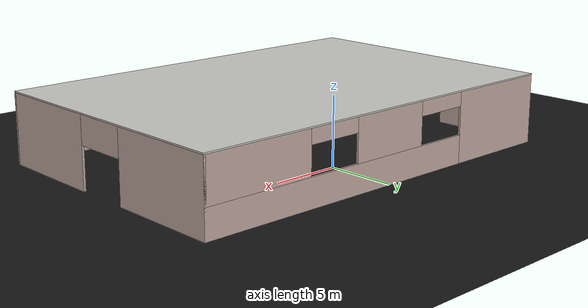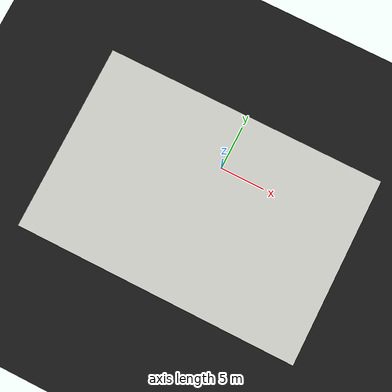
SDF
<?xml version="1.0" ?>
<sdf version="1.4">
  <world name="default">
    <physics type="ode">
      <real_time_factor>1.0</real_time_factor>
      <real_time_update_rate>1000</real_time_update_rate>
      <gravity>0 0 -9.8</gravity>
      <ode>
        <solver>
          <type>quick</type>
          <min_step_size>0.001</min_step_size>
          <iters>500</iters>
        </solver>
      </ode>
    </physics>
    <light type="directional" name="sun">
      <cast_shadows>true</cast_shadows>
      <pose>0 0 2 0 0 0</pose>
      <diffuse>0.8 0.8 0.8 1</diffuse>
      <specular>0.2 0.2 0.2 1</specular>
      <attenuation>
        <range>1000</range>
        <constant>0.9</constant>
        <linear>0.01</linear>
        <quadratic>0.001</quadratic>
      </attenuation>
      <direction>-0.5 0.1 -0.9</direction>
    </light>
    <model name="ground_plane">
      <static>true</static>
      <link name="link">
        <collision name="collision">
          <geometry>
            <plane>
              <normal>0 0 1</normal>
              <size>100 100</size>
            </plane>
          </geometry>
          <surface>
            <friction>
              <ode>
                <mu>100</mu>
                <mu2>50</mu2>
              </ode>
            </friction>
          </surface>
        </collision>
        <visual name="visual">
          <cast_shadows>false</cast_shadows>
          <geometry>
            <plane>
              <normal>0 0 1</normal>
              <size>100 100</size>
            </plane>
          </geometry>
          <material>
            <ambient>0.09 0.09 0.09 1</ambient>
            <diffuse>0.09 0.09 0.09 1</diffuse>
            <specular>0.0 0.0 0.0 1</specular>
            <emissive>0 0 0 0</emissive>
          </material>
        </visual>
      </link>
    </model>

    <scene>
      <sky>
        <clouds>
          <speed>2</speed>
        </clouds>
      </sky>
    </scene>

    <include>
      <uri>model://building</uri>
      <name>building</name>
      <pose>0 -5 0 0 0 0</pose>
    </include>

  </world>
</sdf>

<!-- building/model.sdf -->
<sdf version='1.6'>
  <model name='building'>
    <pose frame=''>0 0 0 0 -0 0</pose>
    <link name='Floor_1'>
      <collision name='Floor_1_Collision'>
        <geometry>
          <box>
            <size>30.15 20.15 0.1</size>
          </box>
        </geometry>
        <pose frame=''>0 0 0.05 0 -0 0</pose>
      </collision>
      <visual name='Floor_1_Visual'>
        <pose frame=''>0 0 0.05 0 -0 0</pose>
        <geometry>
          <box>
            <size>30.15 20.15 0.1</size>
          </box>
        </geometry>
        <material>
          <script>
            <uri>file://media/materials/scripts/gazebo.material</uri>
            <name>Gazebo/CeilingTiled</name>
          </script>
          <ambient>1 1 1 1</ambient>
        </material>
      </visual>
      <pose frame=''>0 0 5 0 -0 0</pose>
    </link>
    <link name='Wall_0'>
      <pose frame=''>0 10 0 0 -0 0</pose>
      <visual name='Wall_0_Visual_0'>
        <pose frame=''>-11.0375 0 2.5 0 -0 0</pose>
        <geometry>
          <box>
            <size>8.075 0.15 5</size>
          </box>
        </geometry>
        <material>
          <script>
            <uri>file://media/materials/scripts/gazebo.material</uri>
            <name>Gazebo/Grey</name>
          </script>
          <ambient>0.760784 0.662745 0.627451 1</ambient>
        </material>
      </visual>
      <collision name='Wall_0_Collision_0'>
        <geometry>
          <box>
            <size>8.075 0.15 5</size>
          </box>
        </geometry>
        <pose frame=''>-11.0375 0 2.5 0 -0 0</pose>
      </collision>
      <visual name='Wall_0_Visual_1'>
        <pose frame=''>4.0375 0 1 0 -0 0</pose>
        <geometry>
          <box>
            <size>22.075 0.15 2</size>
          </box>
        </geometry>
        <material>
          <script>
            <uri>file://media/materials/scripts/gazebo.material</uri>
            <name>Gazebo/Grey</name>
          </script>
          <ambient>0.760784 0.662745 0.627451 1</ambient>
        </material>
      </visual>
      <collision name='Wall_0_Collision_1'>
        <geometry>
          <box>
            <size>22.075 0.15 2</size>
          </box>
        </geometry>
        <pose frame=''>4.0375 0 1 0 -0 0</pose>
      </collision>
      <visual name='Wall_0_Visual_2'>
        <pose frame=''>0 0 3.5 0 -0 0</pose>
        <geometry>
          <box>
            <size>6 0.15 3</size>
          </box>
        </geometry>
        <material>
          <script>
            <uri>file://media/materials/scripts/gazebo.material</uri>
            <name>Gazebo/Grey</name>
          </script>
          <ambient>0.760784 0.662745 0.627451 1</ambient>
        </material>
      </visual>
      <collision name='Wall_0_Collision_2'>
        <geometry>
          <box>
            <size>6 0.15 3</size>
          </box>
        </geometry>
        <pose frame=''>0 0 3.5 0 -0 0</pose>
      </collision>
      <visual name='Wall_0_Visual_3'>
        <pose frame=''>11.0375 0 3.5 0 -0 0</pose>
        <geometry>
          <box>
            <size>8.075 0.15 3</size>
          </box>
        </geometry>
        <material>
          <script>
            <uri>file://media/materials/scripts/gazebo.material</uri>
            <name>Gazebo/Grey</name>
          </script>
          <ambient>0.760784 0.662745 0.627451 1</ambient>
        </material>
      </visual>
      <collision name='Wall_0_Collision_3'>
        <geometry>
          <box>
            <size>8.075 0.15 3</size>
          </box>
        </geometry>
        <pose frame=''>11.0375 0 3.5 0 -0 0</pose>
      </collision>
      <visual name='Wall_0_Visual_4'>
        <pose frame=''>-5 0 4.5 0 -0 0</pose>
        <geometry>
          <box>
            <size>4 0.15 1</size>
          </box>
        </geometry>
        <material>
          <script>
            <uri>file://media/materials/scripts/gazebo.material</uri>
            <name>Gazebo/Grey</name>
          </script>
          <ambient>0.760784 0.662745 0.627451 1</ambient>
        </material>
      </visual>
      <collision name='Wall_0_Collision_4'>
        <geometry>
          <box>
            <size>4 0.15 1</size>
          </box>
        </geometry>
        <pose frame=''>-5 0 4.5 0 -0 0</pose>
      </collision>
      <visual name='Wall_0_Visual_5'>
        <pose frame=''>5 0 4.5 0 -0 0</pose>
        <geometry>
          <box>
            <size>4 0.15 1</size>
          </box>
        </geometry>
        <material>
          <script>
            <uri>file://media/materials/scripts/gazebo.material</uri>
            <name>Gazebo/Grey</name>
          </script>
          <ambient>0.760784 0.662745 0.627451 1</ambient>
        </material>
      </visual>
      <collision name='Wall_0_Collision_5'>
        <geometry>
          <box>
            <size>4 0.15 1</size>
          </box>
        </geometry>
        <pose frame=''>5 0 4.5 0 -0 0</pose>
      </collision>
    </link>
    <link name='Wall_1'>
      <pose frame=''>15 0 0 0 0 -1.5708</pose>
      <visual name='Wall_1_Visual_0'>
        <pose frame=''>-6.0375 0 2.5 0 -0 0</pose>
        <geometry>
          <box>
            <size>8.075 0.15 5</size>
          </box>
        </geometry>
        <material>
          <script>
            <uri>file://media/materials/scripts/gazebo.material</uri>
            <name>Gazebo/Grey</name>
          </script>
          <ambient>0.760784 0.662745 0.627451 1</ambient>
        </material>
      </visual>
      <collision name='Wall_1_Collision_0'>
        <geometry>
          <box>
            <size>8.075 0.15 5</size>
          </box>
        </geometry>
        <pose frame=''>-6.0375 0 2.5 0 -0 0</pose>
      </collision>
      <visual name='Wall_1_Visual_1'>
        <pose frame=''>6.0375 0 2.5 0 -0 0</pose>
        <geometry>
          <box>
            <size>8.075 0.15 5</size>
          </box>
        </geometry>
        <material>
          <script>
            <uri>file://media/materials/scripts/gazebo.material</uri>
            <name>Gazebo/Grey</name>
          </script>
          <ambient>0.760784 0.662745 0.627451 1</ambient>
        </material>
      </visual>
      <collision name='Wall_1_Collision_1'>
        <geometry>
          <box>
            <size>8.075 0.15 5</size>
          </box>
        </geometry>
        <pose frame=''>6.0375 0 2.5 0 -0 0</pose>
      </collision>
      <visual name='Wall_1_Visual_2'>
        <pose frame=''>0 0 4 0 -0 0</pose>
        <geometry>
          <box>
            <size>4 0.15 2</size>
          </box>
        </geometry>
        <material>
          <script>
            <uri>file://media/materials/scripts/gazebo.material</uri>
            <name>Gazebo/Grey</name>
          </script>
          <ambient>0.760784 0.662745 0.627451 1</ambient>
        </material>
      </visual>
      <collision name='Wall_1_Collision_2'>
        <geometry>
          <box>
            <size>4 0.15 2</size>
          </box>
        </geometry>
        <pose frame=''>0 0 4 0 -0 0</pose>
      </collision>
    </link>
    <link name='Wall_2'>
      <pose frame=''>0 -10 0 0 -0 3.14159</pose>
      <visual name='Wall_2_Visual_0'>
        <pose frame=''>-11.0375 0 2.5 0 -0 0</pose>
        <geometry>
          <box>
            <size>8.075 0.15 5</size>
          </box>
        </geometry>
        <material>
          <script>
            <uri>file://media/materials/scripts/gazebo.material</uri>
            <name>Gazebo/Grey</name>
          </script>
          <ambient>0.760784 0.662745 0.627451 1</ambient>
        </material>
      </visual>
      <collision name='Wall_2_Collision_0'>
        <geometry>
          <box>
            <size>8.075 0.15 5</size>
          </box>
        </geometry>
        <pose frame=''>-11.0375 0 2.5 0 -0 0</pose>
      </collision>
      <visual name='Wall_2_Visual_1'>
        <pose frame=''>4.0375 0 1 0 -0 0</pose>
        <geometry>
          <box>
            <size>22.075 0.15 2</size>
          </box>
        </geometry>
        <material>
          <script>
            <uri>file://media/materials/scripts/gazebo.material</uri>
            <name>Gazebo/Grey</name>
          </script>
          <ambient>0.760784 0.662745 0.627451 1</ambient>
        </material>
      </visual>
      <collision name='Wall_2_Collision_1'>
        <geometry>
          <box>
            <size>22.075 0.15 2</size>
          </box>
        </geometry>
        <pose frame=''>4.0375 0 1 0 -0 0</pose>
      </collision>
      <visual name='Wall_2_Visual_2'>
        <pose frame=''>0 0 3.5 0 -0 0</pose>
        <geometry>
          <box>
            <size>6 0.15 3</size>
          </box>
        </geometry>
        <material>
          <script>
            <uri>file://media/materials/scripts/gazebo.material</uri>
            <name>Gazebo/Grey</name>
          </script>
          <ambient>0.760784 0.662745 0.627451 1</ambient>
        </material>
      </visual>
      <collision name='Wall_2_Collision_2'>
        <geometry>
          <box>
            <size>6 0.15 3</size>
          </box>
        </geometry>
        <pose frame=''>0 0 3.5 0 -0 0</pose>
      </collision>
      <visual name='Wall_2_Visual_3'>
        <pose frame=''>11.0375 0 3.5 0 -0 0</pose>
        <geometry>
          <box>
            <size>8.075 0.15 3</size>
          </box>
        </geometry>
        <material>
          <script>
            <uri>file://media/materials/scripts/gazebo.material</uri>
            <name>Gazebo/Grey</name>
          </script>
          <ambient>0.760784 0.662745 0.627451 1</ambient>
        </material>
      </visual>
      <collision name='Wall_2_Collision_3'>
        <geometry>
          <box>
            <size>8.075 0.15 3</size>
          </box>
        </geometry>
        <pose frame=''>11.0375 0 3.5 0 -0 0</pose>
      </collision>
      <visual name='Wall_2_Visual_4'>
        <pose frame=''>-5 0 4.5 0 -0 0</pose>
        <geometry>
          <box>
            <size>4 0.15 1</size>
          </box>
        </geometry>
        <material>
          <script>
            <uri>file://media/materials/scripts/gazebo.material</uri>
            <name>Gazebo/Grey</name>
          </script>
          <ambient>0.760784 0.662745 0.627451 1</ambient>
        </material>
      </visual>
      <collision name='Wall_2_Collision_4'>
        <geometry>
          <box>
            <size>4 0.15 1</size>
          </box>
        </geometry>
        <pose frame=''>-5 0 4.5 0 -0 0</pose>
      </collision>
      <visual name='Wall_2_Visual_5'>
        <pose frame=''>5 0 4.5 0 -0 0</pose>
        <geometry>
          <box>
            <size>4 0.15 1</size>
          </box>
        </geometry>
        <material>
          <script>
            <uri>file://media/materials/scripts/gazebo.material</uri>
            <name>Gazebo/Grey</name>
          </script>
          <ambient>0.760784 0.662745 0.627451 1</ambient>
        </material>
      </visual>
      <collision name='Wall_2_Collision_5'>
        <geometry>
          <box>
            <size>4 0.15 1</size>
          </box>
        </geometry>
        <pose frame=''>5 0 4.5 0 -0 0</pose>
      </collision>
    </link>
    <link name='Wall_3'>
      <pose frame=''>-15 0 0 0 -0 1.5708</pose>
      <visual name='Wall_3_Visual_0'>
        <pose frame=''>-6.0375 0 2.5 0 -0 0</pose>
        <geometry>
          <box>
            <size>8.075 0.15 5</size>
          </box>
        </geometry>
        <material>
          <script>
            <uri>file://media/materials/scripts/gazebo.material</uri>
            <name>Gazebo/Grey</name>
          </script>
          <ambient>0.760784 0.662745 0.627451 1</ambient>
        </material>
      </visual>
      <collision name='Wall_3_Collision_0'>
        <geometry>
          <box>
            <size>8.075 0.15 5</size>
          </box>
        </geometry>
        <pose frame=''>-6.0375 0 2.5 0 -0 0</pose>
      </collision>
      <visual name='Wall_3_Visual_1'>
        <pose frame=''>6.0375 0 2.5 0 -0 0</pose>
        <geometry>
          <box>
            <size>8.075 0.15 5</size>
          </box>
        </geometry>
        <material>
          <script>
            <uri>file://media/materials/scripts/gazebo.material</uri>
            <name>Gazebo/Grey</name>
          </script>
          <ambient>0.760784 0.662745 0.627451 1</ambient>
        </material>
      </visual>
      <collision name='Wall_3_Collision_1'>
        <geometry>
          <box>
            <size>8.075 0.15 5</size>
          </box>
        </geometry>
        <pose frame=''>6.0375 0 2.5 0 -0 0</pose>
      </collision>
      <visual name='Wall_3_Visual_2'>
        <pose frame=''>0 0 4 0 -0 0</pose>
        <geometry>
          <box>
            <size>4 0.15 2</size>
          </box>
        </geometry>
        <material>
          <script>
            <uri>file://media/materials/scripts/gazebo.material</uri>
            <name>Gazebo/Grey</name>
          </script>
          <ambient>0.760784 0.662745 0.627451 1</ambient>
        </material>
      </visual>
      <collision name='Wall_3_Collision_2'>
        <geometry>
          <box>
            <size>4 0.15 2</size>
          </box>
        </geometry>
        <pose frame=''>0 0 4 0 -0 0</pose>
      </collision>
    </link>
    <static>1</static>
  </model>
</sdf>
